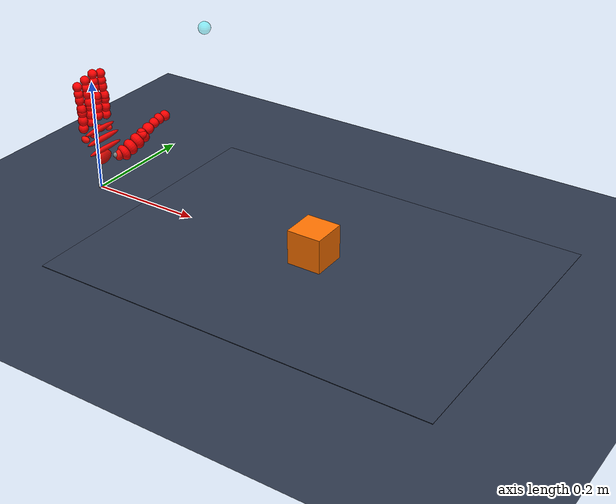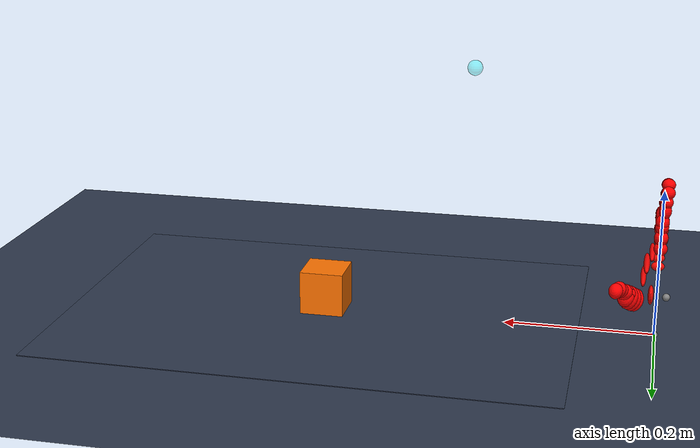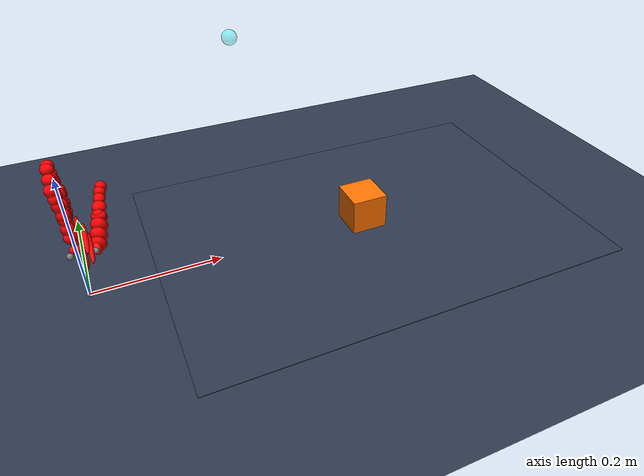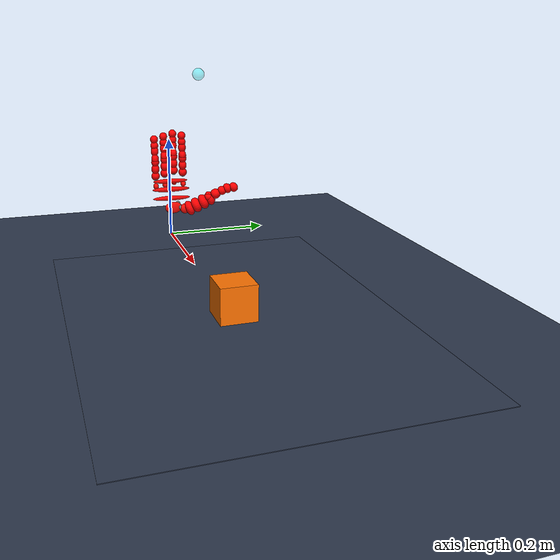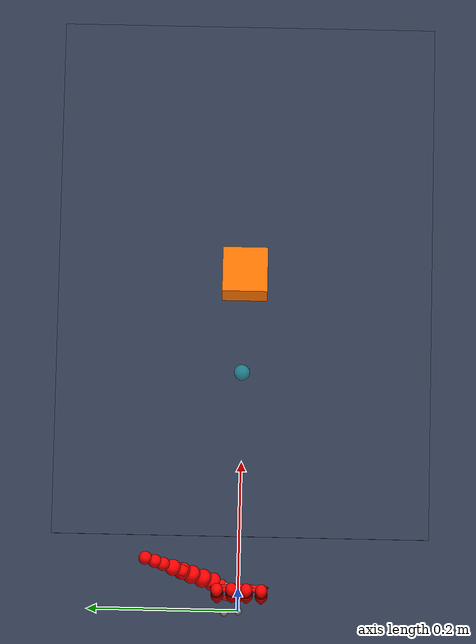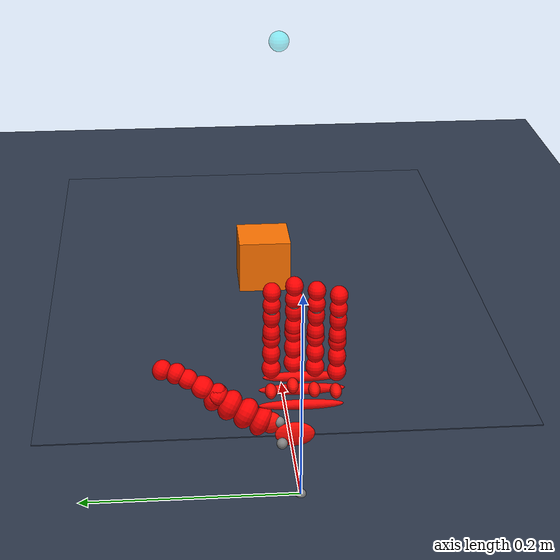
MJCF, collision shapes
<?xml version='1.0' encoding='utf-8'?>
<mujoco model="linkerhand_O7_right.urdf">
  <option timestep="0.001" gravity="0 0 -9.81" integrator="implicitfast" iterations="100" tolerance="1e-8" solver="Newton" cone="elliptic" impratio="1" />
  <default>
    <joint damping="0.25" armature="0.002" />
  </default>
  <visual>
    <headlight ambient="0.55 0.55 0.55" diffuse="0.85 0.85 0.85" specular="0.10 0.10 0.10" />
  <rgba haze="0.00 0.00 0.00 1" /></visual>
  <default>
    <default class="robot">
      <default class="motor">
        <joint />
        <motor />
      </default>
      <default class="visual">
        <geom contype="0" conaffinity="0" group="2" />
      </default>
      <default class="collision">
        <geom condim="3" contype="0" conaffinity="1" priority="1" group="1" solref="0.02 1" solimp="0.8 0.95 0.001" friction="4.0 0.10 0.010" />
      </default>
    </default>
  </default>
  <compiler angle="radian" />
  <asset>
    <material name="auto_mat" rgba="0 0.6 1 1" />
    <material name="default_material" rgba="0.7 0.7 0.7 1" />
    <material name="collision_material" rgba="1.0 0.28 0.1 0.9" />
    <mesh name="hand_base_link.STL" file="../assets/o7_right/meshes/hand_base_link.STL" />
    <mesh name="thumb_metacarpals_base1.STL" file="../assets/o7_right/meshes/thumb_metacarpals_base1.STL" />
    <mesh name="thumb_metacarpals_base2.STL" file="../assets/o7_right/meshes/thumb_metacarpals_base2.STL" />
    <mesh name="thumb_metacarpals.STL" file="../assets/o7_right/meshes/thumb_metacarpals.STL" />
    <mesh name="thumb_proximal.STL" file="../assets/o7_right/meshes/thumb_proximal.STL" />
    <mesh name="thumb_distal.STL" file="../assets/o7_right/meshes/thumb_distal.STL" />
    <mesh name="index_proximal.STL" file="../assets/o7_right/meshes/index_proximal.STL" />
    <mesh name="index_middle.STL" file="../assets/o7_right/meshes/index_middle.STL" />
    <mesh name="index_distal.STL" file="../assets/o7_right/meshes/index_distal.STL" />
    <mesh name="middle_proximal.STL" file="../assets/o7_right/meshes/middle_proximal.STL" />
    <mesh name="middle_middle.STL" file="../assets/o7_right/meshes/middle_middle.STL" />
    <mesh name="middle_distal.STL" file="../assets/o7_right/meshes/middle_distal.STL" />
    <mesh name="ring_proximal.STL" file="../assets/o7_right/meshes/ring_proximal.STL" />
    <mesh name="ring_middle.STL" file="../assets/o7_right/meshes/ring_middle.STL" />
    <mesh name="ring_distal.STL" file="../assets/o7_right/meshes/ring_distal.STL" />
    <mesh name="pinky_proximal.STL" file="../assets/o7_right/meshes/pinky_proximal.STL" />
    <mesh name="pinky_middle.STL" file="../assets/o7_right/meshes/pinky_middle.STL" />
    <mesh name="pinky_distal.STL" file="../assets/o7_right/meshes/pinky_distal.STL" />
    <mesh name="hand_base_link_coacd_mesh_000" file="../assets/o7_right/collision_coacd/hand_base_link_coacd_000.obj" />
    <mesh name="hand_base_link_coacd_mesh_001" file="../assets/o7_right/collision_coacd/hand_base_link_coacd_001.obj" />
    <mesh name="hand_base_link_coacd_mesh_002" file="../assets/o7_right/collision_coacd/hand_base_link_coacd_002.obj" />
    <mesh name="hand_base_link_coacd_mesh_003" file="../assets/o7_right/collision_coacd/hand_base_link_coacd_003.obj" />
    <mesh name="hand_base_link_coacd_mesh_004" file="../assets/o7_right/collision_coacd/hand_base_link_coacd_004.obj" />
    <mesh name="hand_base_link_coacd_mesh_005" file="../assets/o7_right/collision_coacd/hand_base_link_coacd_005.obj" />
    <mesh name="hand_base_link_coacd_mesh_006" file="../assets/o7_right/collision_coacd/hand_base_link_coacd_006.obj" />
    <mesh name="hand_base_link_coacd_mesh_007" file="../assets/o7_right/collision_coacd/hand_base_link_coacd_007.obj" />
    <mesh name="hand_base_link_coacd_mesh_008" file="../assets/o7_right/collision_coacd/hand_base_link_coacd_008.obj" />
    <mesh name="hand_base_link_coacd_mesh_009" file="../assets/o7_right/collision_coacd/hand_base_link_coacd_009.obj" />
    <mesh name="hand_base_link_coacd_mesh_010" file="../assets/o7_right/collision_coacd/hand_base_link_coacd_010.obj" />
    <mesh name="hand_base_link_coacd_mesh_011" file="../assets/o7_right/collision_coacd/hand_base_link_coacd_011.obj" />
    <mesh name="hand_base_link_coacd_mesh_012" file="../assets/o7_right/collision_coacd/hand_base_link_coacd_012.obj" />
    <mesh name="hand_base_link_coacd_mesh_013" file="../assets/o7_right/collision_coacd/hand_base_link_coacd_013.obj" />
    <mesh name="hand_base_link_coacd_mesh_014" file="../assets/o7_right/collision_coacd/hand_base_link_coacd_014.obj" />
    <mesh name="hand_base_link_coacd_mesh_015" file="../assets/o7_right/collision_coacd/hand_base_link_coacd_015.obj" />
    <mesh name="hand_base_link_coacd_mesh_016" file="../assets/o7_right/collision_coacd/hand_base_link_coacd_016.obj" />
    <mesh name="hand_base_link_coacd_mesh_017" file="../assets/o7_right/collision_coacd/hand_base_link_coacd_017.obj" />
    <mesh name="index_distal_coacd_mesh_000" file="../assets/o7_right/collision_coacd/index_distal_coacd_000.obj" />
    <mesh name="index_distal_coacd_mesh_001" file="../assets/o7_right/collision_coacd/index_distal_coacd_001.obj" />
    <mesh name="index_distal_coacd_mesh_002" file="../assets/o7_right/collision_coacd/index_distal_coacd_002.obj" />
    <mesh name="index_distal_coacd_mesh_003" file="../assets/o7_right/collision_coacd/index_distal_coacd_003.obj" />
    <mesh name="index_distal_coacd_mesh_004" file="../assets/o7_right/collision_coacd/index_distal_coacd_004.obj" />
    <mesh name="index_distal_coacd_mesh_005" file="../assets/o7_right/collision_coacd/index_distal_coacd_005.obj" />
    <mesh name="index_middle_coacd_mesh_000" file="../assets/o7_right/collision_coacd/index_middle_coacd_000.obj" />
    <mesh name="index_middle_coacd_mesh_001" file="../assets/o7_right/collision_coacd/index_middle_coacd_001.obj" />
    <mesh name="index_middle_coacd_mesh_002" file="../assets/o7_right/collision_coacd/index_middle_coacd_002.obj" />
    <mesh name="index_middle_coacd_mesh_003" file="../assets/o7_right/collision_coacd/index_middle_coacd_003.obj" />
    <mesh name="index_middle_coacd_mesh_004" file="../assets/o7_right/collision_coacd/index_middle_coacd_004.obj" />
    <mesh name="index_middle_coacd_mesh_005" file="../assets/o7_right/collision_coacd/index_middle_coacd_005.obj" />
    <mesh name="index_proximal_coacd_mesh_000" file="../assets/o7_right/collision_coacd/index_proximal_coacd_000.obj" />
    <mesh name="index_proximal_coacd_mesh_001" file="../assets/o7_right/collision_coacd/index_proximal_coacd_001.obj" />
    <mesh name="index_proximal_coacd_mesh_002" file="../assets/o7_right/collision_coacd/index_proximal_coacd_002.obj" />
    <mesh name="index_proximal_coacd_mesh_003" file="../assets/o7_right/collision_coacd/index_proximal_coacd_003.obj" />
    <mesh name="index_proximal_coacd_mesh_004" file="../assets/o7_right/collision_coacd/index_proximal_coacd_004.obj" />
    <mesh name="index_proximal_coacd_mesh_005" file="../assets/o7_right/collision_coacd/index_proximal_coacd_005.obj" />
    <mesh name="middle_distal_coacd_mesh_000" file="../assets/o7_right/collision_coacd/middle_distal_coacd_000.obj" />
    <mesh name="middle_distal_coacd_mesh_001" file="../assets/o7_right/collision_coacd/middle_distal_coacd_001.obj" />
    <mesh name="middle_distal_coacd_mesh_002" file="../assets/o7_right/collision_coacd/middle_distal_coacd_002.obj" />
    <mesh name="middle_distal_coacd_mesh_003" file="../assets/o7_right/collision_coacd/middle_distal_coacd_003.obj" />
    <mesh name="middle_distal_coacd_mesh_004" file="../assets/o7_right/collision_coacd/middle_distal_coacd_004.obj" />
    <mesh name="middle_distal_coacd_mesh_005" file="../assets/o7_right/collision_coacd/middle_distal_coacd_005.obj" />
    <mesh name="middle_middle_coacd_mesh_000" file="../assets/o7_right/collision_coacd/middle_middle_coacd_000.obj" />
    <mesh name="middle_middle_coacd_mesh_001" file="../assets/o7_right/collision_coacd/middle_middle_coacd_001.obj" />
    <mesh name="middle_middle_coacd_mesh_002" file="../assets/o7_right/collision_coacd/middle_middle_coacd_002.obj" />
    <mesh name="middle_middle_coacd_mesh_003" file="../assets/o7_right/collision_coacd/middle_middle_coacd_003.obj" />
    <mesh name="middle_middle_coacd_mesh_004" file="../assets/o7_right/collision_coacd/middle_middle_coacd_004.obj" />
    <mesh name="middle_middle_coacd_mesh_005" file="../assets/o7_right/collision_coacd/middle_middle_coacd_005.obj" />
    <mesh name="middle_proximal_coacd_mesh_000" file="../assets/o7_right/collision_coacd/middle_proximal_coacd_000.obj" />
    <mesh name="middle_proximal_coacd_mesh_001" file="../assets/o7_right/collision_coacd/middle_proximal_coacd_001.obj" />
    <mesh name="middle_proximal_coacd_mesh_002" file="../assets/o7_right/collision_coacd/middle_proximal_coacd_002.obj" />
    <mesh name="middle_proximal_coacd_mesh_003" file="../assets/o7_right/collision_coacd/middle_proximal_coacd_003.obj" />
    <mesh name="middle_proximal_coacd_mesh_004" file="../assets/o7_right/collision_coacd/middle_proximal_coacd_004.obj" />
    <mesh name="middle_proximal_coacd_mesh_005" file="../assets/o7_right/collision_coacd/middle_proximal_coacd_005.obj" />
    <mesh name="pinky_distal_coacd_mesh_000" file="../assets/o7_right/collision_coacd/pinky_distal_coacd_000.obj" />
    <mesh name="pinky_distal_coacd_mesh_001" file="../assets/o7_right/collision_coacd/pinky_distal_coacd_001.obj" />
    <mesh name="pinky_distal_coacd_mesh_002" file="../assets/o7_right/collision_coacd/pinky_distal_coacd_002.obj" />
    <mesh name="pinky_distal_coacd_mesh_003" file="../assets/o7_right/collision_coacd/pinky_distal_coacd_003.obj" />
    <mesh name="pinky_distal_coacd_mesh_004" file="../assets/o7_right/collision_coacd/pinky_distal_coacd_004.obj" />
    <mesh name="pinky_distal_coacd_mesh_005" file="../assets/o7_right/collision_coacd/pinky_distal_coacd_005.obj" />
    <mesh name="pinky_middle_coacd_mesh_000" file="../assets/o7_right/collision_coacd/pinky_middle_coacd_000.obj" />
    <mesh name="pinky_middle_coacd_mesh_001" file="../assets/o7_right/collision_coacd/pinky_middle_coacd_001.obj" />
    <mesh name="pinky_middle_coacd_mesh_002" file="../assets/o7_right/collision_coacd/pinky_middle_coacd_002.obj" />
    <mesh name="pinky_middle_coacd_mesh_003" file="../assets/o7_right/collision_coacd/pinky_middle_coacd_003.obj" />
    <mesh name="pinky_middle_coacd_mesh_004" file="../assets/o7_right/collision_coacd/pinky_middle_coacd_004.obj" />
    <mesh name="pinky_middle_coacd_mesh_005" file="../assets/o7_right/collision_coacd/pinky_middle_coacd_005.obj" />
    <mesh name="pinky_proximal_coacd_mesh_000" file="../assets/o7_right/collision_coacd/pinky_proximal_coacd_000.obj" />
    <mesh name="pinky_proximal_coacd_mesh_001" file="../assets/o7_right/collision_coacd/pinky_proximal_coacd_001.obj" />
    <mesh name="pinky_proximal_coacd_mesh_002" file="../assets/o7_right/collision_coacd/pinky_proximal_coacd_002.obj" />
    <mesh name="pinky_proximal_coacd_mesh_003" file="../assets/o7_right/collision_coacd/pinky_proximal_coacd_003.obj" />
    <mesh name="pinky_proximal_coacd_mesh_004" file="../assets/o7_right/collision_coacd/pinky_proximal_coacd_004.obj" />
    <mesh name="pinky_proximal_coacd_mesh_005" file="../assets/o7_right/collision_coacd/pinky_proximal_coacd_005.obj" />
    <mesh name="ring_distal_coacd_mesh_000" file="../assets/o7_right/collision_coacd/ring_distal_coacd_000.obj" />
    <mesh name="ring_distal_coacd_mesh_001" file="../assets/o7_right/collision_coacd/ring_distal_coacd_001.obj" />
    <mesh name="ring_distal_coacd_mesh_002" file="../assets/o7_right/collision_coacd/ring_distal_coacd_002.obj" />
    <mesh name="ring_distal_coacd_mesh_003" file="../assets/o7_right/collision_coacd/ring_distal_coacd_003.obj" />
    <mesh name="ring_distal_coacd_mesh_004" file="../assets/o7_right/collision_coacd/ring_distal_coacd_004.obj" />
    <mesh name="ring_distal_coacd_mesh_005" file="../assets/o7_right/collision_coacd/ring_distal_coacd_005.obj" />
    <mesh name="ring_middle_coacd_mesh_000" file="../assets/o7_right/collision_coacd/ring_middle_coacd_000.obj" />
    <mesh name="ring_middle_coacd_mesh_001" file="../assets/o7_right/collision_coacd/ring_middle_coacd_001.obj" />
    <mesh name="ring_middle_coacd_mesh_002" file="../assets/o7_right/collision_coacd/ring_middle_coacd_002.obj" />
    <mesh name="ring_middle_coacd_mesh_003" file="../assets/o7_right/collision_coacd/ring_middle_coacd_003.obj" />
    <mesh name="ring_middle_coacd_mesh_004" file="../assets/o7_right/collision_coacd/ring_middle_coacd_004.obj" />
    <mesh name="ring_middle_coacd_mesh_005" file="../assets/o7_right/collision_coacd/ring_middle_coacd_005.obj" />
    <mesh name="ring_proximal_coacd_mesh_000" file="../assets/o7_right/collision_coacd/ring_proximal_coacd_000.obj" />
    <mesh name="ring_proximal_coacd_mesh_001" file="../assets/o7_right/collision_coacd/ring_proximal_coacd_001.obj" />
    <mesh name="ring_proximal_coacd_mesh_002" file="../assets/o7_right/collision_coacd/ring_proximal_coacd_002.obj" />
    <mesh name="ring_proximal_coacd_mesh_003" file="../assets/o7_right/collision_coacd/ring_proximal_coacd_003.obj" />
    <mesh name="ring_proximal_coacd_mesh_004" file="../assets/o7_right/collision_coacd/ring_proximal_coacd_004.obj" />
    <mesh name="ring_proximal_coacd_mesh_005" file="../assets/o7_right/collision_coacd/ring_proximal_coacd_005.obj" />
    <mesh name="thumb_distal_coacd_mesh_000" file="../assets/o7_right/collision_coacd/thumb_distal_coacd_000.obj" />
    <mesh name="thumb_distal_coacd_mesh_001" file="../assets/o7_right/collision_coacd/thumb_distal_coacd_001.obj" />
    <mesh name="thumb_distal_coacd_mesh_002" file="../assets/o7_right/collision_coacd/thumb_distal_coacd_002.obj" />
    <mesh name="thumb_distal_coacd_mesh_003" file="../assets/o7_right/collision_coacd/thumb_distal_coacd_003.obj" />
    <mesh name="thumb_distal_coacd_mesh_004" file="../assets/o7_right/collision_coacd/thumb_distal_coacd_004.obj" />
    <mesh name="thumb_distal_coacd_mesh_005" file="../assets/o7_right/collision_coacd/thumb_distal_coacd_005.obj" />
    <mesh name="thumb_distal_coacd_mesh_006" file="../assets/o7_right/collision_coacd/thumb_distal_coacd_006.obj" />
    <mesh name="thumb_distal_coacd_mesh_007" file="../assets/o7_right/collision_coacd/thumb_distal_coacd_007.obj" />
    <mesh name="thumb_metacarpals_coacd_mesh_000" file="../assets/o7_right/collision_coacd/thumb_metacarpals_coacd_000.obj" />
    <mesh name="thumb_metacarpals_coacd_mesh_001" file="../assets/o7_right/collision_coacd/thumb_metacarpals_coacd_001.obj" />
    <mesh name="thumb_metacarpals_coacd_mesh_002" file="../assets/o7_right/collision_coacd/thumb_metacarpals_coacd_002.obj" />
    <mesh name="thumb_metacarpals_coacd_mesh_003" file="../assets/o7_right/collision_coacd/thumb_metacarpals_coacd_003.obj" />
    <mesh name="thumb_metacarpals_coacd_mesh_004" file="../assets/o7_right/collision_coacd/thumb_metacarpals_coacd_004.obj" />
    <mesh name="thumb_metacarpals_coacd_mesh_005" file="../assets/o7_right/collision_coacd/thumb_metacarpals_coacd_005.obj" />
    <mesh name="thumb_metacarpals_coacd_mesh_006" file="../assets/o7_right/collision_coacd/thumb_metacarpals_coacd_006.obj" />
    <mesh name="thumb_metacarpals_coacd_mesh_007" file="../assets/o7_right/collision_coacd/thumb_metacarpals_coacd_007.obj" />
    <mesh name="thumb_metacarpals_coacd_mesh_008" file="../assets/o7_right/collision_coacd/thumb_metacarpals_coacd_008.obj" />
    <mesh name="thumb_metacarpals_coacd_mesh_009" file="../assets/o7_right/collision_coacd/thumb_metacarpals_coacd_009.obj" />
    <mesh name="thumb_metacarpals_coacd_mesh_010" file="../assets/o7_right/collision_coacd/thumb_metacarpals_coacd_010.obj" />
    <mesh name="thumb_metacarpals_coacd_mesh_011" file="../assets/o7_right/collision_coacd/thumb_metacarpals_coacd_011.obj" />
    <mesh name="thumb_metacarpals_coacd_mesh_012" file="../assets/o7_right/collision_coacd/thumb_metacarpals_coacd_012.obj" />
    <mesh name="thumb_metacarpals_coacd_mesh_013" file="../assets/o7_right/collision_coacd/thumb_metacarpals_coacd_013.obj" />
    <mesh name="thumb_metacarpals_base1_coacd_mesh_000" file="../assets/o7_right/collision_coacd/thumb_metacarpals_base1_coacd_000.obj" />
    <mesh name="thumb_metacarpals_base1_coacd_mesh_001" file="../assets/o7_right/collision_coacd/thumb_metacarpals_base1_coacd_001.obj" />
    <mesh name="thumb_metacarpals_base1_coacd_mesh_002" file="../assets/o7_right/collision_coacd/thumb_metacarpals_base1_coacd_002.obj" />
    <mesh name="thumb_metacarpals_base1_coacd_mesh_003" file="../assets/o7_right/collision_coacd/thumb_metacarpals_base1_coacd_003.obj" />
    <mesh name="thumb_metacarpals_base1_coacd_mesh_004" file="../assets/o7_right/collision_coacd/thumb_metacarpals_base1_coacd_004.obj" />
    <mesh name="thumb_metacarpals_base1_coacd_mesh_005" file="../assets/o7_right/collision_coacd/thumb_metacarpals_base1_coacd_005.obj" />
    <mesh name="thumb_metacarpals_base2_coacd_mesh_000" file="../assets/o7_right/collision_coacd/thumb_metacarpals_base2_coacd_000.obj" />
    <mesh name="thumb_metacarpals_base2_coacd_mesh_001" file="../assets/o7_right/collision_coacd/thumb_metacarpals_base2_coacd_001.obj" />
    <mesh name="thumb_metacarpals_base2_coacd_mesh_002" file="../assets/o7_right/collision_coacd/thumb_metacarpals_base2_coacd_002.obj" />
    <mesh name="thumb_metacarpals_base2_coacd_mesh_003" file="../assets/o7_right/collision_coacd/thumb_metacarpals_base2_coacd_003.obj" />
    <mesh name="thumb_metacarpals_base2_coacd_mesh_004" file="../assets/o7_right/collision_coacd/thumb_metacarpals_base2_coacd_004.obj" />
    <mesh name="thumb_metacarpals_base2_coacd_mesh_005" file="../assets/o7_right/collision_coacd/thumb_metacarpals_base2_coacd_005.obj" />
    <mesh name="thumb_proximal_coacd_mesh_000" file="../assets/o7_right/collision_coacd/thumb_proximal_coacd_000.obj" />
    <mesh name="thumb_proximal_coacd_mesh_001" file="../assets/o7_right/collision_coacd/thumb_proximal_coacd_001.obj" />
    <mesh name="thumb_proximal_coacd_mesh_002" file="../assets/o7_right/collision_coacd/thumb_proximal_coacd_002.obj" />
    <mesh name="thumb_proximal_coacd_mesh_003" file="../assets/o7_right/collision_coacd/thumb_proximal_coacd_003.obj" />
    <mesh name="thumb_proximal_coacd_mesh_004" file="../assets/o7_right/collision_coacd/thumb_proximal_coacd_004.obj" />
    <mesh name="thumb_proximal_coacd_mesh_005" file="../assets/o7_right/collision_coacd/thumb_proximal_coacd_005.obj" />
    <mesh name="thumb_proximal_coacd_mesh_006" file="../assets/o7_right/collision_coacd/thumb_proximal_coacd_006.obj" />
    <mesh name="thumb_proximal_coacd_mesh_007" file="../assets/o7_right/collision_coacd/thumb_proximal_coacd_007.obj" />
  <texture name="v8_18b_black_sky" type="skybox" builtin="flat" rgb1="0.00 0.00 0.00" rgb2="0.00 0.00 0.00" width="512" height="512" /><texture name="v8_18b_table_checker" type="2d" builtin="checker" rgb1="0.12 0.15 0.20" rgb2="0.42 0.48 0.58" width="512" height="512" /><material name="v8_18b_table_mat" texture="v8_18b_table_checker" texrepeat="12 12" texuniform="true" rgba="1 1 1 1" /></asset>
  <worldbody>
    <light name="sun" pos="0 0 3" dir="0 0 -1" directional="true" diffuse="1 1 1" specular="0.1 0.1 0.1" />
    <geom name="ground" type="plane" pos="0 0 0" size="6 6 0.1" rgba="0.18 0.22 0.30 1" contype="4" conaffinity="2" condim="3" friction="1.2 0.005 0.0001" group="0" margin="0" gap="0" solref="0.006 1" solimp="0.9 0.95 0.001 0.5 2" priority="1" material="v8_18b_table_mat" />
    <body name="o7_mocap" mocap="true" pos="0.25 0 0.35" quat="0 1 0 0">
      <geom name="o7_mocap_marker" type="sphere" size="0.01" rgba="0 1 1 0.35" contype="0" conaffinity="0" />
    </body>
    <geom name="table" type="box" pos="0.45 0 -0.010" size="0.35 0.25 0.010" rgba="0.18 0.22 0.30 1" friction="1.2 0.005 0.0001" contype="4" conaffinity="2" condim="3" group="0" margin="0" gap="0" solref="0.006 1" solimp="0.9 0.95 0.001 0.5 2" priority="1" material="v8_18b_table_mat" />
    <body name="grasp_box" pos="0.45 0 0.030">
      <freejoint name="grasp_box_free" />
      <geom name="grasp_box_geom" type="box" size="0.030 0.030 0.030" mass="0.06" rgba="1.00 0.45 0.00 1" friction="1.2 0.005 0.0001" solref="0.006 1" solimp="0.9 0.95 0.001 0.5 2" condim="3" contype="2" conaffinity="5" margin="0" gap="0" group="0" priority="1" />
    </body>
    <body name="hand_base_link" pos="0.00000000 0.00000000 0.00000000" quat="1 0 0 0" childclass="robot">
      <freejoint name="floating_base" />
      <geom name="hand_base_link_visual" pos="0 0 0" quat="1.0 0.0 0.0 0.0" type="mesh" mesh="hand_base_link.STL" class="visual" contype="0" conaffinity="0" group="2" rgba="0.70 0.90 1.00 1" />
      <body name="thumb_metacarpals_base1" pos="-0.0116 0.018174 0.061651" quat="1.0 0.0 0.0 0.0">
        <joint name="thumb_cmc_roll" type="hinge" ref="0.0" class="motor" range="0.0 1.1339" axis="1 0 0" limited="true" damping="0.18" armature="0.002" frictionloss="0.025" />
        <site name="thumb_cmc_roll_site" pos="0 0 0" quat="1 0 0 0" />
        <inertial pos="0.0243580400165841 -0.00531338959293788 -0.00133528896045803" quat="1.0 0.0 0.0 0.0" mass="0.0140456690808547" diaginertia="4.03793977591736e-06 1.52575111360524e-06 2.85304047365918e-06" />
        <geom name="thumb_metacarpals_base1_visual" pos="0 0 0" quat="1.0 0.0 0.0 0.0" type="mesh" mesh="thumb_metacarpals_base1.STL" class="visual" contype="0" conaffinity="0" group="2" rgba="0.70 0.90 1.00 1" />
        <body name="thumb_metacarpals_base2" pos="0.0358 -0.00065771 0.0001518" quat="0.9935754099238239 -0.11317201418506882 0.0 0.0">
          <joint name="thumb_cmc_yaw" type="hinge" ref="0.0" class="motor" range="0.0 1.9189" axis="0 0 -1" limited="true" damping="0.18" armature="0.002" frictionloss="0.025" />
          <site name="thumb_cmc_yaw_site" pos="0 0 0" quat="1 0 0 0" />
          <inertial pos="0.00213681318180131 0.00710763177501164 -0.000263312556487913" quat="1.0 0.0 0.0 0.0" mass="0.00582710539297639" diaginertia="3.15922714505223e-07 2.74612320744176e-07 1.76908032965576e-07" />
          <geom name="thumb_metacarpals_base2_visual" pos="0 0 0" quat="1.0 0.0 0.0 0.0" type="mesh" mesh="thumb_metacarpals_base2.STL" class="visual" contype="0" conaffinity="0" group="2" rgba="0.70 0.90 1.00 1" />
          <body name="thumb_metacarpals" pos="0.00456 0.015168 -0.0019302" quat="0.5351736632933759 -0.35491803847471504 -0.2639191569816051 -0.7197006423927437">
            <joint name="thumb_cmc_pitch" type="hinge" ref="0.0" class="motor" range="0.0 0.5146" axis="0 1 0" limited="true" damping="0.18" armature="0.002" frictionloss="0.025" />
            <site name="thumb_cmc_pitch_site" pos="0 0 0" quat="1 0 0 0" />
            <inertial pos="0.00183660291644091 -2.80954450064368E-06 0.0269905349664822" quat="1.0 0.0 0.0 0.0" mass="0.0152012310446388" diaginertia="2.95371796729834e-06 3.84772219086697e-06 1.32007529685639e-06" />
            <geom name="thumb_metacarpals_visual" pos="0 0 0" quat="1.0 0.0 0.0 0.0" type="mesh" mesh="thumb_metacarpals.STL" class="visual" contype="0" conaffinity="0" group="2" rgba="0.70 0.90 1.00 1" />
            <body name="thumb_proximal" pos="0.0061722 0 0.047968" quat="1.0 0.0 0.0 0.0">
              <joint name="thumb_mcp" type="hinge" ref="0.0" class="motor" range="0.0 0.7152" axis="0 1 0" limited="true" damping="0.12" armature="0.0015" frictionloss="0.018" />
              <site name="thumb_mcp_site" pos="0 0 0" quat="1 0 0 0" />
              <inertial pos="0.00159270655316215 -4.43144050971817E-06 0.015157347405203" quat="1.0 0.0 0.0 0.0" mass="0.00662229628279784" diaginertia="1.01526863749369e-06 9.10432361984289e-07 4.47462819849415e-07" />
              <geom name="thumb_proximal_visual" pos="0 0 0" quat="1.0 0.0 0.0 0.0" type="mesh" mesh="thumb_proximal.STL" class="visual" contype="0" conaffinity="0" group="2" rgba="0.70 0.90 1.00 1" />
              <body name="thumb_distal" pos="-0.00017064 0 0.038665" quat="1.0 0.0 0.0 0.0">
                <joint name="thumb_ip" type="hinge" ref="0.0" class="motor" range="0.0 0.7763" axis="0 1 0" limited="true" damping="0.12" armature="0.0015" frictionloss="0.018" />
                <site name="thumb_ip_site" pos="0 0 0" quat="1 0 0 0" />
                <inertial pos="-0.00138915766541476 1.66356642710211E-06 0.0115789718721026" quat="1.0 0.0 0.0 0.0" mass="0.00512930046605133" diaginertia="3.3096790319488e-07 3.23805443196431e-07 2.48902658161616e-07" />
                <geom name="thumb_distal_visual" pos="0 0 0" quat="1.0 0.0 0.0 0.0" type="mesh" mesh="thumb_distal.STL" class="visual" contype="0" conaffinity="0" group="2" rgba="0.70 0.90 1.00 1" />
                <geom name="thumb_distal_seg_welded_proxy_00" type="ellipsoid" pos="0.0014177565 -9.3132257e-10 0.0049575599" size="0.010267449 0.0089373486 0.0084179119" rgba="1.00 0.00 0.00 0.30" group="3" contype="1" conaffinity="1" condim="3" priority="1" friction="1.2 0.005 0.0001" solref="0.006 1" solimp="0.9 0.95 0.001 0.5 2" margin="0" gap="0" />
                <geom name="thumb_distal_seg_welded_proxy_01" type="ellipsoid" pos="-0.0020558592 -9.3132257e-10 0.017714364" size="0.00993998 0.0088071543 0.0084329088" rgba="1.00 0.00 0.00 0.30" group="3" contype="1" conaffinity="1" condim="3" priority="1" friction="1.2 0.005 0.0001" solref="0.006 1" solimp="0.9 0.95 0.001 0.5 2" margin="0" gap="0" />
              </body>
              <geom name="thumb_proximal_seg_welded_proxy_00" type="ellipsoid" pos="0.0011908459 9.3132257e-10 0.0015342138" size="0.0095763208 0.011418478 0.0092492684" rgba="1.00 0.00 0.00 0.30" group="3" contype="1" conaffinity="1" condim="3" priority="1" friction="1.2 0.005 0.0001" solref="0.006 1" solimp="0.9 0.95 0.001 0.5 2" margin="0" gap="0" />
              <geom name="thumb_proximal_seg_welded_proxy_01" type="ellipsoid" pos="0.0011115079 9.3132257e-10 0.016729946" size="0.010268411 0.010781533 0.010455523" rgba="1.00 0.00 0.00 0.30" group="3" contype="1" conaffinity="1" condim="3" priority="1" friction="1.2 0.005 0.0001" solref="0.006 1" solimp="0.9 0.95 0.001 0.5 2" margin="0" gap="0" />
              <geom name="thumb_proximal_seg_welded_proxy_02" type="ellipsoid" pos="0.0016500601 -9.3132257e-10 0.031946566" size="0.0092987767 0.0089632181 0.0092213012" rgba="1.00 0.00 0.00 0.30" group="3" contype="1" conaffinity="1" condim="3" priority="1" friction="1.2 0.005 0.0001" solref="0.006 1" solimp="0.9 0.95 0.001 0.5 2" margin="0" gap="0" />
            </body>
            <geom name="thumb_metacarpals_seg_welded_proxy_00" type="ellipsoid" pos="0.0031110882 -1.5739352e-07 0.0037766628" size="0.015472268 0.012285867 0.0092004892" rgba="1.00 0.00 0.00 0.30" group="3" contype="1" conaffinity="1" condim="3" priority="1" friction="1.2 0.005 0.0001" solref="0.006 1" solimp="0.9 0.95 0.001 0.5 2" margin="0" gap="0" />
            <geom name="thumb_metacarpals_seg_welded_proxy_01" type="ellipsoid" pos="0.0029999395 -1.5739352e-07 0.018947497" size="0.015646179 0.012411042 0.010418733" rgba="1.00 0.00 0.00 0.30" group="3" contype="1" conaffinity="1" condim="3" priority="1" friction="1.2 0.005 0.0001" solref="0.006 1" solimp="0.9 0.95 0.001 0.5 2" margin="0" gap="0" />
            <geom name="thumb_metacarpals_seg_welded_proxy_02" type="ellipsoid" pos="0.0031080949 -1.5925616e-07 0.035250448" size="0.015540187 0.012227055 0.010331286" rgba="1.00 0.00 0.00 0.30" group="3" contype="1" conaffinity="1" condim="3" priority="1" friction="1.2 0.005 0.0001" solref="0.006 1" solimp="0.9 0.95 0.001 0.5 2" margin="0" gap="0" />
            <geom name="thumb_metacarpals_seg_welded_proxy_03" type="ellipsoid" pos="0.0037281332 -1.5832484e-07 0.050500816" size="0.014570531 0.011062616 0.0092166811" rgba="1.00 0.00 0.00 0.30" group="3" contype="1" conaffinity="1" condim="3" priority="1" friction="1.2 0.005 0.0001" solref="0.006 1" solimp="0.9 0.95 0.001 0.5 2" margin="0" gap="0" />
          </body>
          <geom name="thumb_metacarpals_base2_v84_small_base_pad" type="ellipsoid" pos="0.0024231584 0.0079890126 0" size="0.0065 0.0105 0.0105" rgba="1 0.05 0.02 0.40" group="3" contype="1" conaffinity="1" condim="3" priority="1" friction="1.2 0.005 0.0001" solref="0.006 1" solimp="0.9 0.95 0.001 0.5 2" margin="0" gap="0" />
        </body>
        <geom name="thumb_metacarpals_base1_v84_small_base_pad" type="ellipsoid" pos="0.0198 -0.013184668 -0.0031044767" size="0.0038 0.018 0.012" rgba="1 0.05 0.02 0.40" group="3" contype="1" conaffinity="1" condim="3" priority="1" friction="1.2 0.005 0.0001" solref="0.006 1" solimp="0.9 0.95 0.001 0.5 2" margin="0" gap="0" />
      </body>
      <body name="index_proximal" pos="0.0022097 0.027177 0.12685" quat="1.0 0.0 0.0 0.0">
        <joint name="index_mcp_pitch" type="hinge" ref="0.0" class="motor" range="0.0 1.3607" axis="0 1 0" limited="true" damping="0.18" armature="0.002" frictionloss="0.025" />
        <site name="index_mcp_pitch_site" pos="0 0 0" quat="1 0 0 0" />
        <inertial pos="-0.000134757090763184 1.17149846208878E-06 0.0104816315652075" quat="1.0 0.0 0.0 0.0" mass="0.00654982590538705" diaginertia="4.4387863322219e-07 4.58697796485196e-07 1.74228691388322e-07" />
        <geom name="index_proximal_visual" pos="0 0 0" quat="1.0 0.0 0.0 0.0" type="mesh" mesh="index_proximal.STL" class="visual" contype="0" conaffinity="0" group="2" rgba="0.70 0.90 1.00 1" />
        <body name="index_middle" pos="-0.0010861 0 0.035634" quat="1.0 0.0 0.0 0.0">
          <joint name="index_pip" type="hinge" ref="0.0" class="motor" range="0.0 1.8317" axis="0 1 0" limited="true" damping="0.12" armature="0.0015" frictionloss="0.018" />
          <site name="index_pip_site" pos="0 0 0" quat="1 0 0 0" />
          <inertial pos="-0.00252078721834403 -2.09523372295822E-06 0.0110357108291392" quat="1.0 0.0 0.0 0.0" mass="0.00283043635989883" diaginertia="2.60908300266926e-07 2.33077671334714e-07 1.26672570359698e-07" />
          <geom name="index_middle_visual" pos="0 0 0" quat="1.0 0.0 0.0 0.0" type="mesh" mesh="index_middle.STL" class="visual" contype="0" conaffinity="0" group="2" rgba="0.70 0.90 1.00 1" />
          <body name="index_distal" pos="-0.0052857 0 0.025703" quat="1.0 0.0 0.0 0.0">
            <joint name="index_dip" type="hinge" ref="0.0" class="motor" range="0.0 0.638" axis="0 1 0" limited="true" damping="0.12" armature="0.0015" frictionloss="0.018" />
            <site name="index_dip_site" pos="0 0 0" quat="1 0 0 0" />
            <inertial pos="-0.000622482641131194 5.23441917530537E-06 0.0121505004635115" quat="1.0 0.0 0.0 0.0" mass="0.00314458616089874" diaginertia="1.63947556753414e-07 1.48366028231131e-07 9.79320068649637e-08" />
            <geom name="index_distal_visual" pos="0 0 0" quat="1.0 0.0 0.0 0.0" type="mesh" mesh="index_distal.STL" class="visual" contype="0" conaffinity="0" group="2" rgba="0.70 0.90 1.00 1" />
            <geom name="index_distal_seg_welded_proxy_00" type="ellipsoid" pos="0.001137034 -2.1886081e-08 0.0052276572" size="0.0081041647 0.007708547 0.0083140802" rgba="1.00 0.00 0.00 0.30" group="3" contype="1" conaffinity="1" condim="3" priority="1" friction="1.2 0.005 0.0001" solref="0.006 1" solimp="0.9 0.95 0.001 0.5 2" margin="0" gap="0" />
            <geom name="index_distal_seg_welded_proxy_01" type="ellipsoid" pos="2.8565526e-05 -2.1886081e-08 0.01777624" size="0.0086915504 0.007708547 0.0083161275" rgba="1.00 0.00 0.00 0.30" group="3" contype="1" conaffinity="1" condim="3" priority="1" friction="1.2 0.005 0.0001" solref="0.006 1" solimp="0.9 0.95 0.001 0.5 2" margin="0" gap="0" />
          </body>
          <geom name="index_middle_seg_welded_proxy_00" type="ellipsoid" pos="-0.00064192247 -2.3283064e-10 0.0038584536" size="0.0088760547 0.0075067018 0.010364001" rgba="1.00 0.00 0.00 0.30" group="3" contype="1" conaffinity="1" condim="3" priority="1" friction="1.2 0.005 0.0001" solref="0.006 1" solimp="0.9 0.95 0.001 0.5 2" margin="0" gap="0" />
          <geom name="index_middle_seg_welded_proxy_01" type="ellipsoid" pos="-0.0029703421 9.3132257e-10 0.019603878" size="0.0080686075 0.0075067463 0.010354474" rgba="1.00 0.00 0.00 0.30" group="3" contype="1" conaffinity="1" condim="3" priority="1" friction="1.2 0.005 0.0001" solref="0.006 1" solimp="0.9 0.95 0.001 0.5 2" margin="0" gap="0" />
        </body>
        <geom name="index_proximal_seg_welded_proxy_00" type="ellipsoid" pos="-0.0017548939 0 0.0040915068" size="0.0088396317 0.0082289239 0.0088160321" rgba="1.00 0.00 0.00 0.30" group="3" contype="1" conaffinity="1" condim="3" priority="1" friction="1.2 0.005 0.0001" solref="0.006 1" solimp="0.9 0.95 0.001 0.5 2" margin="0" gap="0" />
        <geom name="index_proximal_seg_welded_proxy_01" type="ellipsoid" pos="-0.0014997621 -1.3969839e-09 0.018641943" size="0.0090896609 0.0078354565 0.009889245" rgba="1.00 0.00 0.00 0.30" group="3" contype="1" conaffinity="1" condim="3" priority="1" friction="1.2 0.005 0.0001" solref="0.006 1" solimp="0.9 0.95 0.001 0.5 2" margin="0" gap="0" />
        <geom name="index_proximal_seg_welded_proxy_02" type="ellipsoid" pos="-0.001469712 0 0.033053069" size="0.0087734382 0.0078302455 0.0088120345" rgba="1.00 0.00 0.00 0.30" group="3" contype="1" conaffinity="1" condim="3" priority="1" friction="1.2 0.005 0.0001" solref="0.006 1" solimp="0.9 0.95 0.001 0.5 2" margin="0" gap="0" />
      </body>
      <body name="middle_proximal" pos="0.0022097 0.0081771 0.13185" quat="1.0 0.0 0.0 0.0">
        <joint name="middle_mcp_pitch" type="hinge" ref="0.0" class="motor" range="0.0 1.3607" axis="0 1 0" limited="true" damping="0.18" armature="0.002" frictionloss="0.025" />
        <site name="middle_mcp_pitch_site" pos="0 0 0" quat="1 0 0 0" />
        <inertial pos="-0.000134759525542065 1.17052495086315E-06 0.0104816256254227" quat="1.0 0.0 0.0 0.0" mass="0.00654982976492332" diaginertia="4.43878677686474e-07 4.58697936345066e-07 1.74228809222635e-07" />
        <geom name="middle_proximal_visual" pos="0 0 0" quat="1.0 0.0 0.0 0.0" type="mesh" mesh="middle_proximal.STL" class="visual" contype="0" conaffinity="0" group="2" rgba="0.70 0.90 1.00 1" />
        <body name="middle_middle" pos="-0.0010861 0 0.035634" quat="1.0 0.0 0.0 0.0">
          <joint name="middle_pip" type="hinge" ref="0.0" class="motor" range="0.0 1.8317" axis="0 1 0" limited="true" damping="0.12" armature="0.0015" frictionloss="0.018" />
          <site name="middle_pip_site" pos="0 0 0" quat="1 0 0 0" />
          <inertial pos="-0.00252078721834716 -2.09523371817646E-06 0.011035710829132" quat="1.0 0.0 0.0 0.0" mass="0.00283043635989613" diaginertia="2.60908300266734e-07 2.33077671334844e-07 1.26672570359912e-07" />
          <geom name="middle_middle_visual" pos="0 0 0" quat="1.0 0.0 0.0 0.0" type="mesh" mesh="middle_middle.STL" class="visual" contype="0" conaffinity="0" group="2" rgba="0.70 0.90 1.00 1" />
          <body name="middle_distal" pos="-0.0052857 0 0.025703" quat="1.0 0.0 0.0 0.0">
            <joint name="middle_dip" type="hinge" ref="0.0" class="motor" range="0.0 0.628" axis="0 1 0" limited="true" damping="0.12" armature="0.0015" frictionloss="0.018" />
            <site name="middle_dip_site" pos="0 0 0" quat="1 0 0 0" />
            <inertial pos="-0.000622482698909851 5.23446393570041E-06 0.0121505005518132" quat="1.0 0.0 0.0 0.0" mass="0.00314458619941957" diaginertia="1.63947561150062e-07 1.48366032281885e-07 9.79320086242323e-08" />
            <geom name="middle_distal_visual" pos="0 0 0" quat="1.0 0.0 0.0 0.0" type="mesh" mesh="middle_distal.STL" class="visual" contype="0" conaffinity="0" group="2" rgba="0.70 0.90 1.00 1" />
            <geom name="middle_distal_seg_welded_proxy_00" type="ellipsoid" pos="0.001137034 -2.1886081e-08 0.0052276572" size="0.0081041647 0.007708547 0.0083140802" rgba="1.00 0.00 0.00 0.30" group="3" contype="1" conaffinity="1" condim="3" priority="1" friction="1.2 0.005 0.0001" solref="0.006 1" solimp="0.9 0.95 0.001 0.5 2" margin="0" gap="0" />
            <geom name="middle_distal_seg_welded_proxy_01" type="ellipsoid" pos="2.8565526e-05 -2.1886081e-08 0.01777624" size="0.0086915504 0.007708547 0.0083161275" rgba="1.00 0.00 0.00 0.30" group="3" contype="1" conaffinity="1" condim="3" priority="1" friction="1.2 0.005 0.0001" solref="0.006 1" solimp="0.9 0.95 0.001 0.5 2" margin="0" gap="0" />
          </body>
          <geom name="middle_middle_seg_welded_proxy_00" type="ellipsoid" pos="-0.00064192247 -2.3283064e-10 0.0038584536" size="0.0088760547 0.0075067018 0.010364001" rgba="1.00 0.00 0.00 0.30" group="3" contype="1" conaffinity="1" condim="3" priority="1" friction="1.2 0.005 0.0001" solref="0.006 1" solimp="0.9 0.95 0.001 0.5 2" margin="0" gap="0" />
          <geom name="middle_middle_seg_welded_proxy_01" type="ellipsoid" pos="-0.0029703421 9.3132257e-10 0.019603878" size="0.0080686075 0.0075067463 0.010354474" rgba="1.00 0.00 0.00 0.30" group="3" contype="1" conaffinity="1" condim="3" priority="1" friction="1.2 0.005 0.0001" solref="0.006 1" solimp="0.9 0.95 0.001 0.5 2" margin="0" gap="0" />
        </body>
        <geom name="middle_proximal_seg_welded_proxy_00" type="ellipsoid" pos="-0.0017548939 0 0.0040915068" size="0.0088396317 0.0082289239 0.0088160321" rgba="1.00 0.00 0.00 0.30" group="3" contype="1" conaffinity="1" condim="3" priority="1" friction="1.2 0.005 0.0001" solref="0.006 1" solimp="0.9 0.95 0.001 0.5 2" margin="0" gap="0" />
        <geom name="middle_proximal_seg_welded_proxy_01" type="ellipsoid" pos="-0.0014997621 -1.3969839e-09 0.018641943" size="0.0090896609 0.0078354565 0.009889245" rgba="1.00 0.00 0.00 0.30" group="3" contype="1" conaffinity="1" condim="3" priority="1" friction="1.2 0.005 0.0001" solref="0.006 1" solimp="0.9 0.95 0.001 0.5 2" margin="0" gap="0" />
        <geom name="middle_proximal_seg_welded_proxy_02" type="ellipsoid" pos="-0.001469712 0 0.033053069" size="0.0087734382 0.0078302455 0.0088120345" rgba="1.00 0.00 0.00 0.30" group="3" contype="1" conaffinity="1" condim="3" priority="1" friction="1.2 0.005 0.0001" solref="0.006 1" solimp="0.9 0.95 0.001 0.5 2" margin="0" gap="0" />
      </body>
      <body name="ring_proximal" pos="0.0022097 -0.010823 0.12685" quat="1.0 0.0 0.0 0.0">
        <joint name="ring_mcp_pitch" type="hinge" ref="0.0" class="motor" range="0.0 1.3607" axis="0 1 0" limited="true" damping="0.18" armature="0.002" frictionloss="0.025" />
        <site name="ring_mcp_pitch_site" pos="0 0 0" quat="1 0 0 0" />
        <inertial pos="-0.000134757090654265 1.17149840283062E-06 0.0104816315647394" quat="1.0 0.0 0.0 0.0" mass="0.00654982590560025" diaginertia="4.43878633229728e-07 4.58697796493645e-07 1.74228691390674e-07" />
        <geom name="ring_proximal_visual" pos="0 0 0" quat="1.0 0.0 0.0 0.0" type="mesh" mesh="ring_proximal.STL" class="visual" contype="0" conaffinity="0" group="2" rgba="0.70 0.90 1.00 1" />
        <body name="ring_middle" pos="-0.0010861 0 0.035634" quat="1.0 0.0 0.0 0.0">
          <joint name="ring_pip" type="hinge" ref="0.0" class="motor" range="0.0 1.8317" axis="0 1 0" limited="true" damping="0.12" armature="0.0015" frictionloss="0.018" />
          <site name="ring_pip_site" pos="0 0 0" quat="1 0 0 0" />
          <inertial pos="-0.00252078721834402 -2.09523372298771E-06 0.0110357108291391" quat="1.0 0.0 0.0 0.0" mass="0.00283043635989883" diaginertia="2.60908300267002e-07 2.3307767133472e-07 1.26672570359684e-07" />
          <geom name="ring_middle_visual" pos="0 0 0" quat="1.0 0.0 0.0 0.0" type="mesh" mesh="ring_middle.STL" class="visual" contype="0" conaffinity="0" group="2" rgba="0.70 0.90 1.00 1" />
          <body name="ring_distal" pos="-0.0052857 0 0.025703" quat="1.0 0.0 0.0 0.0">
            <joint name="ring_dip" type="hinge" ref="0.0" class="motor" range="0.0 0.628" axis="0 1 0" limited="true" damping="0.12" armature="0.0015" frictionloss="0.018" />
            <site name="ring_dip_site" pos="0 0 0" quat="1 0 0 0" />
            <inertial pos="-0.000622482751969862 5.23452612019235E-06 0.0121505007069385" quat="1.0 0.0 0.0 0.0" mass="0.00314458625244518" diaginertia="1.63947569170933e-07 1.48366039100571e-07 9.79320099040398e-08" />
            <geom name="ring_distal_visual" pos="0 0 0" quat="1.0 0.0 0.0 0.0" type="mesh" mesh="ring_distal.STL" class="visual" contype="0" conaffinity="0" group="2" rgba="0.70 0.90 1.00 1" />
            <geom name="ring_distal_seg_welded_proxy_00" type="ellipsoid" pos="0.001137034 -2.1886081e-08 0.0052276572" size="0.0081041647 0.007708547 0.0083140802" rgba="1.00 0.00 0.00 0.30" group="3" contype="1" conaffinity="1" condim="3" priority="1" friction="1.2 0.005 0.0001" solref="0.006 1" solimp="0.9 0.95 0.001 0.5 2" margin="0" gap="0" />
            <geom name="ring_distal_seg_welded_proxy_01" type="ellipsoid" pos="2.8565526e-05 -2.1886081e-08 0.01777624" size="0.0086915504 0.007708547 0.0083161275" rgba="1.00 0.00 0.00 0.30" group="3" contype="1" conaffinity="1" condim="3" priority="1" friction="1.2 0.005 0.0001" solref="0.006 1" solimp="0.9 0.95 0.001 0.5 2" margin="0" gap="0" />
          </body>
          <geom name="ring_middle_seg_welded_proxy_00" type="ellipsoid" pos="-0.00064192247 -2.3283064e-10 0.0038584536" size="0.0088760547 0.0075067018 0.010364001" rgba="1.00 0.00 0.00 0.30" group="3" contype="1" conaffinity="1" condim="3" priority="1" friction="1.2 0.005 0.0001" solref="0.006 1" solimp="0.9 0.95 0.001 0.5 2" margin="0" gap="0" />
          <geom name="ring_middle_seg_welded_proxy_01" type="ellipsoid" pos="-0.0029703421 9.3132257e-10 0.019603878" size="0.0080686075 0.0075067463 0.010354474" rgba="1.00 0.00 0.00 0.30" group="3" contype="1" conaffinity="1" condim="3" priority="1" friction="1.2 0.005 0.0001" solref="0.006 1" solimp="0.9 0.95 0.001 0.5 2" margin="0" gap="0" />
        </body>
        <geom name="ring_proximal_seg_welded_proxy_00" type="ellipsoid" pos="-0.0017548939 0 0.0040915068" size="0.0088396317 0.0082289239 0.0088160321" rgba="1.00 0.00 0.00 0.30" group="3" contype="1" conaffinity="1" condim="3" priority="1" friction="1.2 0.005 0.0001" solref="0.006 1" solimp="0.9 0.95 0.001 0.5 2" margin="0" gap="0" />
        <geom name="ring_proximal_seg_welded_proxy_01" type="ellipsoid" pos="-0.0014997621 -1.3969839e-09 0.018641943" size="0.0090896609 0.0078354565 0.009889245" rgba="1.00 0.00 0.00 0.30" group="3" contype="1" conaffinity="1" condim="3" priority="1" friction="1.2 0.005 0.0001" solref="0.006 1" solimp="0.9 0.95 0.001 0.5 2" margin="0" gap="0" />
        <geom name="ring_proximal_seg_welded_proxy_02" type="ellipsoid" pos="-0.001469712 0 0.033053069" size="0.0087734382 0.0078302455 0.0088120345" rgba="1.00 0.00 0.00 0.30" group="3" contype="1" conaffinity="1" condim="3" priority="1" friction="1.2 0.005 0.0001" solref="0.006 1" solimp="0.9 0.95 0.001 0.5 2" margin="0" gap="0" />
      </body>
      <body name="pinky_proximal" pos="0.0022097 -0.029823 0.12185" quat="1.0 0.0 0.0 0.0">
        <joint name="pinky_mcp_pitch" type="hinge" ref="0.0" class="motor" range="0.0 1.3607" axis="0 1 0" limited="true" damping="0.18" armature="0.002" frictionloss="0.025" />
        <site name="pinky_mcp_pitch_site" pos="0 0 0" quat="1 0 0 0" />
        <inertial pos="-0.000134757090711979 1.17149839997527E-06 0.0104816315647464" quat="1.0 0.0 0.0 0.0" mass="0.00654982590561137" diaginertia="4.43878633231969e-07 4.58697796494382e-07 1.7422869138941e-07" />
        <geom name="pinky_proximal_visual" pos="0 0 0" quat="1.0 0.0 0.0 0.0" type="mesh" mesh="pinky_proximal.STL" class="visual" contype="0" conaffinity="0" group="2" rgba="0.70 0.90 1.00 1" />
        <body name="pinky_middle" pos="-0.0010861 0 0.035634" quat="1.0 0.0 0.0 0.0">
          <joint name="pinky_pip" type="hinge" ref="0.0" class="motor" range="0.0 1.8317" axis="0 1 0" limited="true" damping="0.12" armature="0.0015" frictionloss="0.018" />
          <site name="pinky_pip_site" pos="0 0 0" quat="1 0 0 0" />
          <inertial pos="-0.00252078721834405 -2.09523372298598E-06 0.0110357108291391" quat="1.0 0.0 0.0 0.0" mass="0.00283043635989883" diaginertia="2.60908300266976e-07 2.33077671334709e-07 1.26672570359743e-07" />
          <geom name="pinky_middle_visual" pos="0 0 0" quat="1.0 0.0 0.0 0.0" type="mesh" mesh="pinky_middle.STL" class="visual" contype="0" conaffinity="0" group="2" rgba="0.70 0.90 1.00 1" />
          <body name="pinky_distal" pos="-0.0052857 0 0.025703" quat="1.0 0.0 0.0 0.0">
            <joint name="pinky_dip" type="hinge" ref="0.0" class="motor" range="0.0 0.628" axis="0 1 0" limited="true" damping="0.12" armature="0.0015" frictionloss="0.018" />
            <site name="pinky_dip_site" pos="0 0 0" quat="1 0 0 0" />
            <inertial pos="-0.000622482885686896 5.23444063671441E-06 0.0121505009269268" quat="1.0 0.0 0.0 0.0" mass="0.00314458634356863" diaginertia="1.63947580158185e-07 1.4836604901918e-07 9.79320135710845e-08" />
            <geom name="pinky_distal_visual" pos="0 0 0" quat="1.0 0.0 0.0 0.0" type="mesh" mesh="pinky_distal.STL" class="visual" contype="0" conaffinity="0" group="2" rgba="0.70 0.90 1.00 1" />
            <geom name="pinky_distal_seg_welded_proxy_00" type="ellipsoid" pos="0.001137034 -2.1886081e-08 0.0052276572" size="0.0081041647 0.007708547 0.0083140802" rgba="1.00 0.00 0.00 0.30" group="3" contype="1" conaffinity="1" condim="3" priority="1" friction="1.2 0.005 0.0001" solref="0.006 1" solimp="0.9 0.95 0.001 0.5 2" margin="0" gap="0" />
            <geom name="pinky_distal_seg_welded_proxy_01" type="ellipsoid" pos="2.8565526e-05 -2.1886081e-08 0.01777624" size="0.0086915504 0.007708547 0.0083161275" rgba="1.00 0.00 0.00 0.30" group="3" contype="1" conaffinity="1" condim="3" priority="1" friction="1.2 0.005 0.0001" solref="0.006 1" solimp="0.9 0.95 0.001 0.5 2" margin="0" gap="0" />
          </body>
          <geom name="pinky_middle_seg_welded_proxy_00" type="ellipsoid" pos="-0.00064192247 -2.3283064e-10 0.0038584536" size="0.0088760547 0.0075067018 0.010364001" rgba="1.00 0.00 0.00 0.30" group="3" contype="1" conaffinity="1" condim="3" priority="1" friction="1.2 0.005 0.0001" solref="0.006 1" solimp="0.9 0.95 0.001 0.5 2" margin="0" gap="0" />
          <geom name="pinky_middle_seg_welded_proxy_01" type="ellipsoid" pos="-0.0029703421 9.3132257e-10 0.019603878" size="0.0080686075 0.0075067463 0.010354474" rgba="1.00 0.00 0.00 0.30" group="3" contype="1" conaffinity="1" condim="3" priority="1" friction="1.2 0.005 0.0001" solref="0.006 1" solimp="0.9 0.95 0.001 0.5 2" margin="0" gap="0" />
        </body>
        <geom name="pinky_proximal_seg_welded_proxy_00" type="ellipsoid" pos="-0.0017548939 0 0.0040915068" size="0.0088396317 0.0082289239 0.0088160321" rgba="1.00 0.00 0.00 0.30" group="3" contype="1" conaffinity="1" condim="3" priority="1" friction="1.2 0.005 0.0001" solref="0.006 1" solimp="0.9 0.95 0.001 0.5 2" margin="0" gap="0" />
        <geom name="pinky_proximal_seg_welded_proxy_01" type="ellipsoid" pos="-0.0014997621 -1.3969839e-09 0.018641943" size="0.0090896609 0.0078354565 0.009889245" rgba="1.00 0.00 0.00 0.30" group="3" contype="1" conaffinity="1" condim="3" priority="1" friction="1.2 0.005 0.0001" solref="0.006 1" solimp="0.9 0.95 0.001 0.5 2" margin="0" gap="0" />
        <geom name="pinky_proximal_seg_welded_proxy_02" type="ellipsoid" pos="-0.001469712 0 0.033053069" size="0.0087734382 0.0078302455 0.0088120345" rgba="1.00 0.00 0.00 0.30" group="3" contype="1" conaffinity="1" condim="3" priority="1" friction="1.2 0.005 0.0001" solref="0.006 1" solimp="0.9 0.95 0.001 0.5 2" margin="0" gap="0" />
      </body>
      <site name="hand_base_link_site" pos="0 0 0" quat="1 0 0 0" />
      <camera name="front_camera" mode="track" fovy="90.0" quat="4.329780281177467e-17 4.329780281177466e-17 0.7071067811865475 0.7071067811865476" pos="0.0 2.0 0.5" />
      <camera name="side_camera" mode="track" fovy="90.0" quat="-0.5 -0.4999999999999999 0.5 0.5000000000000001" pos="-2.0 0.0 0.5" />
      <geom name="hand_base_link_v84_index_proximal_root_pad" type="ellipsoid" pos="0.0022097 0.027177 0.10685" size="0.0085 0.0052 0.0062" rgba="1 0.05 0.02 0.42" group="3" contype="1" conaffinity="1" condim="3" priority="1" friction="1.2 0.005 0.0001" solref="0.006 1" solimp="0.9 0.95 0.001 0.5 2" margin="0" gap="0" />
      <geom name="hand_base_link_v84_middle_proximal_root_pad" type="ellipsoid" pos="0.0022097 0.0081771 0.11185" size="0.0085 0.0052 0.0062" rgba="1 0.05 0.02 0.42" group="3" contype="1" conaffinity="1" condim="3" priority="1" friction="1.2 0.005 0.0001" solref="0.006 1" solimp="0.9 0.95 0.001 0.5 2" margin="0" gap="0" />
      <geom name="hand_base_link_v84_ring_proximal_root_pad" type="ellipsoid" pos="0.0022097 -0.010823 0.10685" size="0.0085 0.0052 0.0062" rgba="1 0.05 0.02 0.42" group="3" contype="1" conaffinity="1" condim="3" priority="1" friction="1.2 0.005 0.0001" solref="0.006 1" solimp="0.9 0.95 0.001 0.5 2" margin="0" gap="0" />
      <geom name="hand_base_link_v84_pinky_proximal_root_pad" type="ellipsoid" pos="0.0022097 -0.029823 0.10485" size="0.0085 0.0052 0.0062" rgba="1 0.05 0.02 0.42" group="3" contype="1" conaffinity="1" condim="3" priority="1" friction="1.2 0.005 0.0001" solref="0.006 1" solimp="0.9 0.95 0.001 0.5 2" margin="0" gap="0" />
      <geom name="hand_base_link_v87_palm_strip_0" type="ellipsoid" pos="0.019289125 -0.001323 0.082" size="0.0038 0.0385 0.0048" rgba="1 0.03 0.02 0.24" group="3" contype="1" conaffinity="1" condim="3" priority="1" friction="1.2 0.005 0.0001" solref="0.006 1" solimp="0.9 0.95 0.001 0.5 2" margin="0" gap="0" />
      <geom name="hand_base_link_v87_palm_strip_1" type="ellipsoid" pos="0.016054267 -0.001323 0.1" size="0.0042 0.0385 0.0052" rgba="1 0.03 0.02 0.24" group="3" contype="1" conaffinity="1" condim="3" priority="1" friction="1.2 0.005 0.0001" solref="0.006 1" solimp="0.9 0.95 0.001 0.5 2" margin="0" gap="0" />
      <geom name="hand_base_link_v87_palm_strip_2" type="ellipsoid" pos="0.010162828 -0.001323 0.116" size="0.0038 0.03542 0.0048" rgba="1 0.03 0.02 0.24" group="3" contype="1" conaffinity="1" condim="3" priority="1" friction="1.2 0.005 0.0001" solref="0.006 1" solimp="0.9 0.95 0.001 0.5 2" margin="0" gap="0" />
    </body>
  </worldbody>
  <equality>
    <weld name="o7_mocap_to_hand_base" body1="o7_mocap" body2="hand_base_link" relpose="0 0 0 1 0 0 0" solref="0.03 1" solimp="0.8 0.95 0.001" />
    <joint name="thumb_mcp_mimic" joint1="thumb_mcp" joint2="thumb_cmc_pitch" polycoef="0 1.3898 0 0 0" solref="0.006 1" solimp="0.90 0.995 0.0005" />
    <joint name="thumb_ip_mimic" joint1="thumb_ip" joint2="thumb_cmc_pitch" polycoef="0 1.5085 0 0 0" solref="0.006 1" solimp="0.90 0.995 0.0005" />
    <joint name="index_pip_mimic" joint1="index_pip" joint2="index_mcp_pitch" polycoef="0 1.3462 0 0 0" solref="0.006 1" solimp="0.90 0.995 0.0005" />
    <joint name="index_dip_mimic" joint1="index_dip" joint2="index_mcp_pitch" polycoef="0 0.4615 0 0 0" solref="0.006 1" solimp="0.90 0.995 0.0005" />
    <joint name="middle_pip_mimic" joint1="middle_pip" joint2="middle_mcp_pitch" polycoef="0 1.3462 0 0 0" solref="0.006 1" solimp="0.90 0.995 0.0005" />
    <joint name="middle_dip_mimic" joint1="middle_dip" joint2="middle_mcp_pitch" polycoef="0 0.4615 0 0 0" solref="0.006 1" solimp="0.90 0.995 0.0005" />
    <joint name="ring_pip_mimic" joint1="ring_pip" joint2="ring_mcp_pitch" polycoef="0 1.3462 0 0 0" solref="0.006 1" solimp="0.90 0.995 0.0005" />
    <joint name="ring_dip_mimic" joint1="ring_dip" joint2="ring_mcp_pitch" polycoef="0 0.4615 0 0 0" solref="0.006 1" solimp="0.90 0.995 0.0005" />
    <joint name="pinky_pip_mimic" joint1="pinky_pip" joint2="pinky_mcp_pitch" polycoef="0 1.3462 0 0 0" solref="0.006 1" solimp="0.90 0.995 0.0005" />
    <joint name="pinky_dip_mimic" joint1="pinky_dip" joint2="pinky_mcp_pitch" polycoef="0 0.4615 0 0 0" solref="0.006 1" solimp="0.90 0.995 0.0005" />
  </equality>
  <contact>
    <exclude body1="hand_base_link" body2="thumb_metacarpals_base1" />
    <exclude body1="thumb_metacarpals_base1" body2="thumb_metacarpals_base2" />
    <exclude body1="thumb_metacarpals_base2" body2="thumb_metacarpals" />
    <exclude body1="thumb_metacarpals" body2="thumb_proximal" />
    <exclude body1="thumb_proximal" body2="thumb_distal" />
    <exclude body1="hand_base_link" body2="index_proximal" />
    <exclude body1="index_proximal" body2="index_middle" />
    <exclude body1="index_middle" body2="index_distal" />
    <exclude body1="hand_base_link" body2="middle_proximal" />
    <exclude body1="middle_proximal" body2="middle_middle" />
    <exclude body1="middle_middle" body2="middle_distal" />
    <exclude body1="hand_base_link" body2="ring_proximal" />
    <exclude body1="ring_proximal" body2="ring_middle" />
    <exclude body1="ring_middle" body2="ring_distal" />
    <exclude body1="hand_base_link" body2="pinky_proximal" />
    <exclude body1="pinky_proximal" body2="pinky_middle" />
    <exclude body1="pinky_middle" body2="pinky_distal" />
  </contact>
  <sensor>
    <framepos name="thumb_cmc_roll_site_pos" objtype="site" objname="thumb_cmc_roll_site" />
    <framequat name="thumb_cmc_roll_site_quat" objtype="site" objname="thumb_cmc_roll_site" />
    <framelinvel name="thumb_cmc_roll_site_linvel" objtype="site" objname="thumb_cmc_roll_site" />
    <frameangvel name="thumb_cmc_roll_site_angvel" objtype="site" objname="thumb_cmc_roll_site" />
    <velocimeter name="thumb_cmc_roll_site_vel" site="thumb_cmc_roll_site" />
  </sensor>
  <actuator>
    <position name="thumb_cmc_roll_pos" joint="thumb_cmc_roll" kp="3.0" forcerange="-1.2 1.2" ctrlrange="0.0 1.1339" ctrllimited="true" forcelimited="true" />
    <position name="thumb_cmc_yaw_pos" joint="thumb_cmc_yaw" kp="3.0" forcerange="-1.2 1.2" ctrlrange="0.0 1.9189" ctrllimited="true" forcelimited="true" />
    <position name="thumb_cmc_pitch_pos" joint="thumb_cmc_pitch" kp="3.0" forcerange="-1.2 1.2" ctrlrange="0.0 0.5146" ctrllimited="true" forcelimited="true" />
    <position name="index_mcp_pitch_pos" joint="index_mcp_pitch" kp="3.5" forcerange="-1.5 1.5" ctrlrange="0.0 1.3607" ctrllimited="true" forcelimited="true" />
    <position name="middle_mcp_pitch_pos" joint="middle_mcp_pitch" kp="3.5" forcerange="-1.5 1.5" ctrlrange="0.0 1.3607" ctrllimited="true" forcelimited="true" />
    <position name="ring_mcp_pitch_pos" joint="ring_mcp_pitch" kp="3.5" forcerange="-1.5 1.5" ctrlrange="0.0 1.3607" ctrllimited="true" forcelimited="true" />
    <position name="pinky_mcp_pitch_pos" joint="pinky_mcp_pitch" kp="3.5" forcerange="-1.5 1.5" ctrlrange="0.0 1.3607" ctrllimited="true" forcelimited="true" />
  </actuator>
</mujoco>
